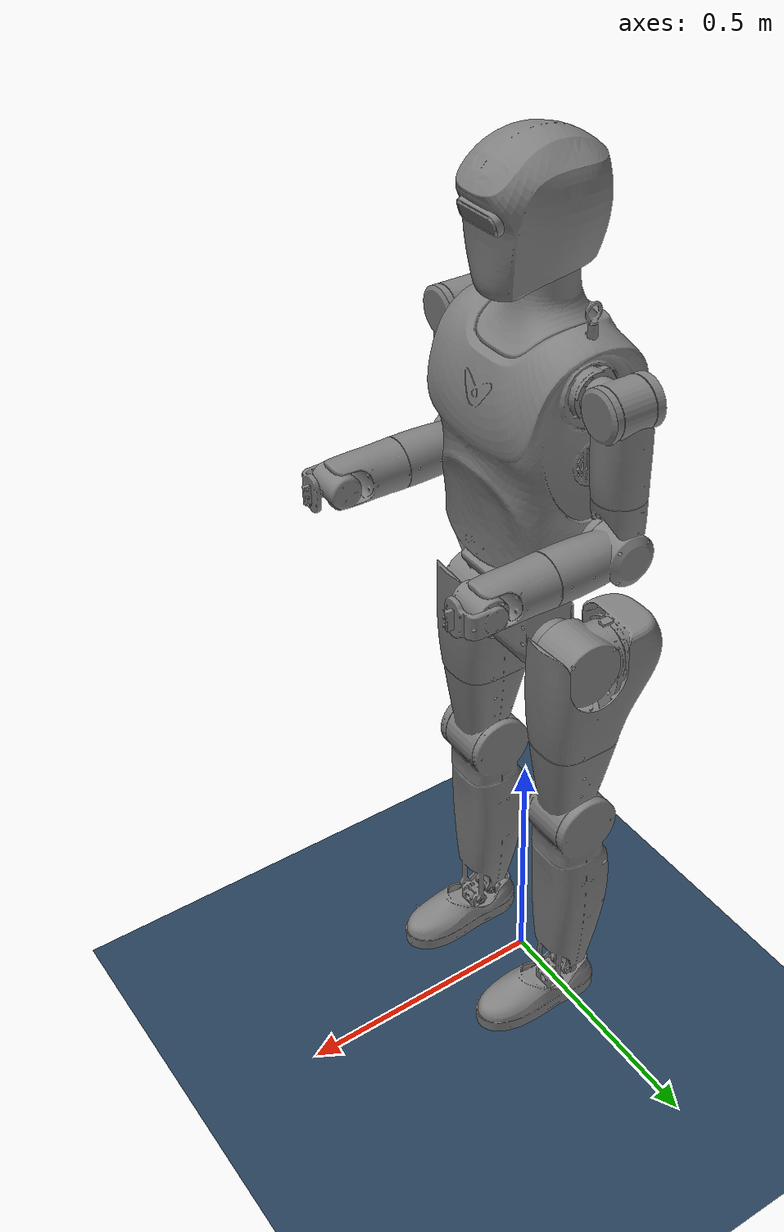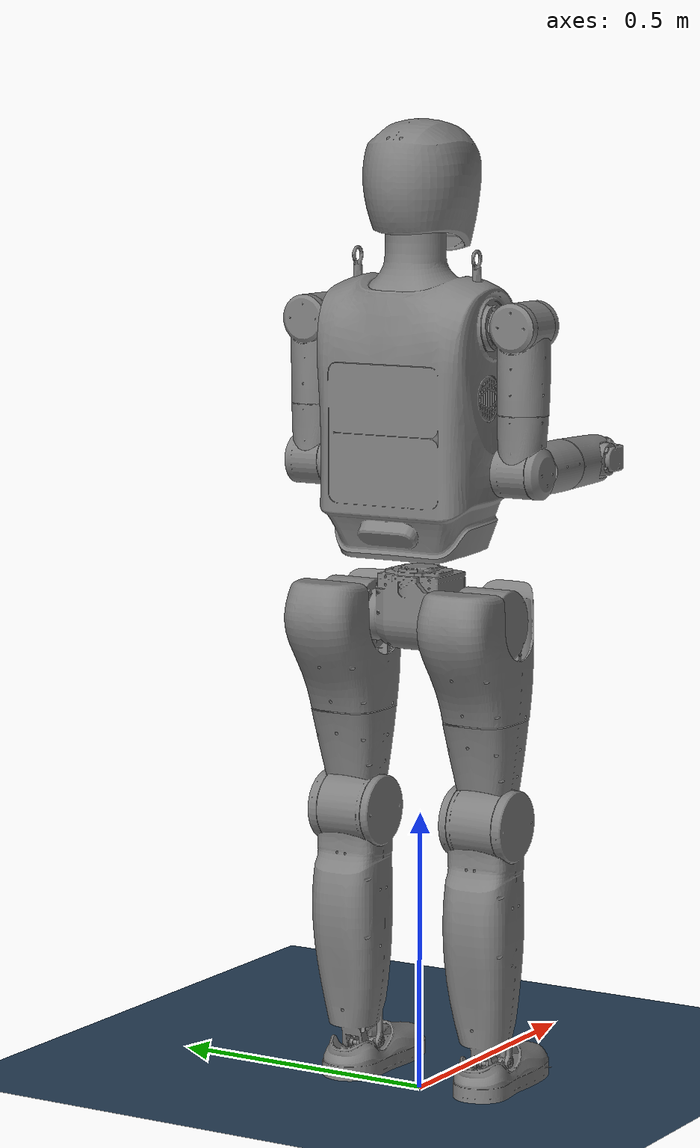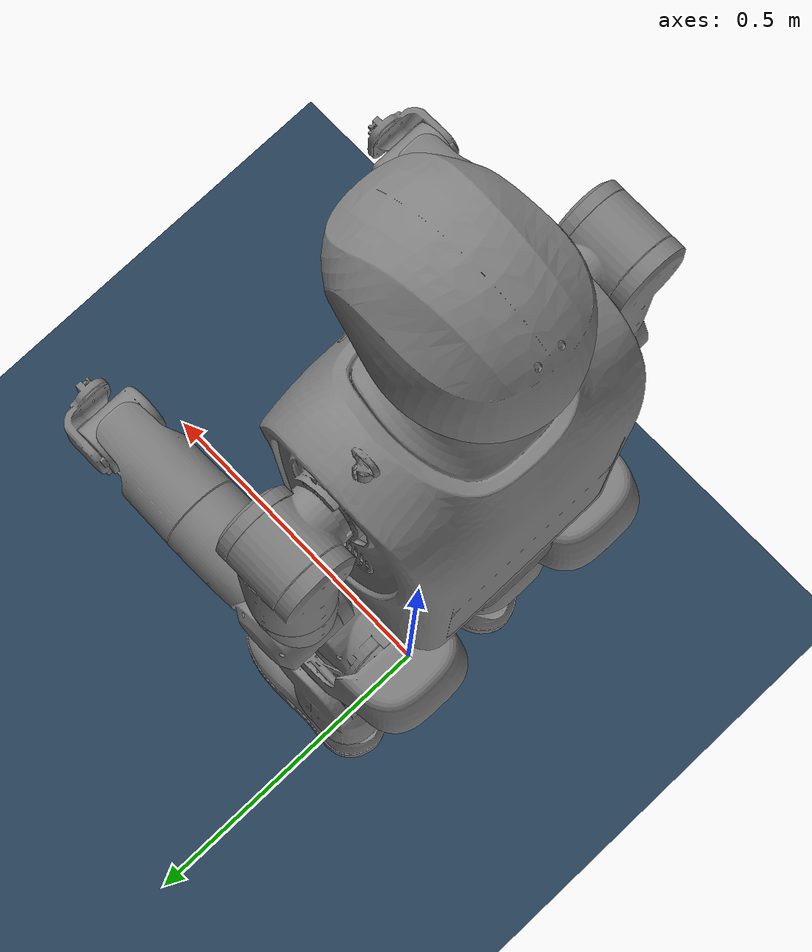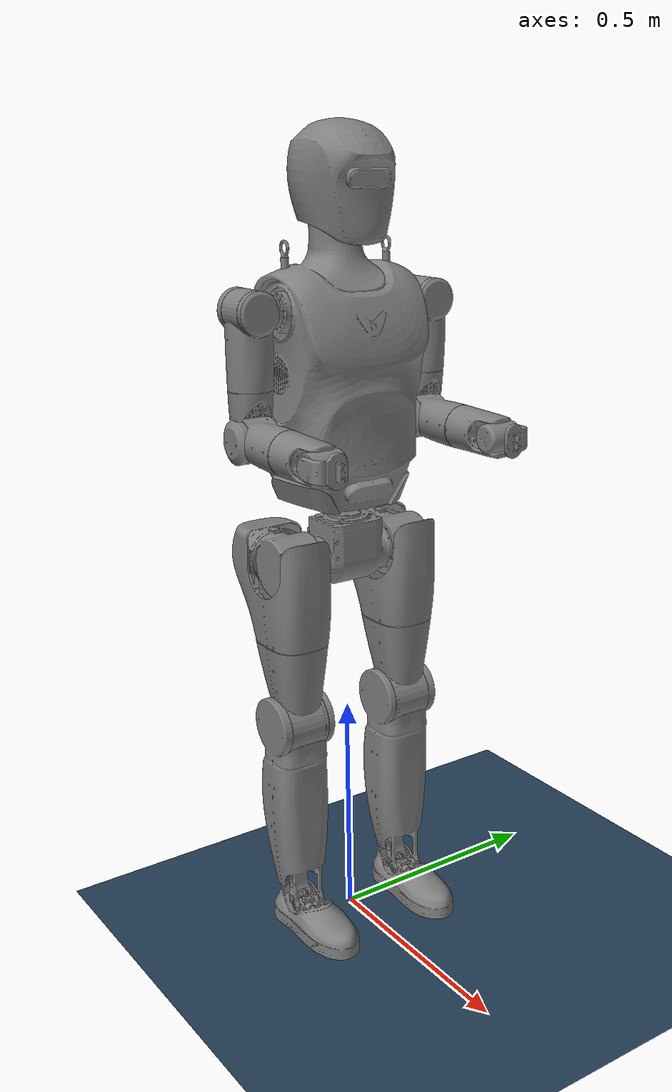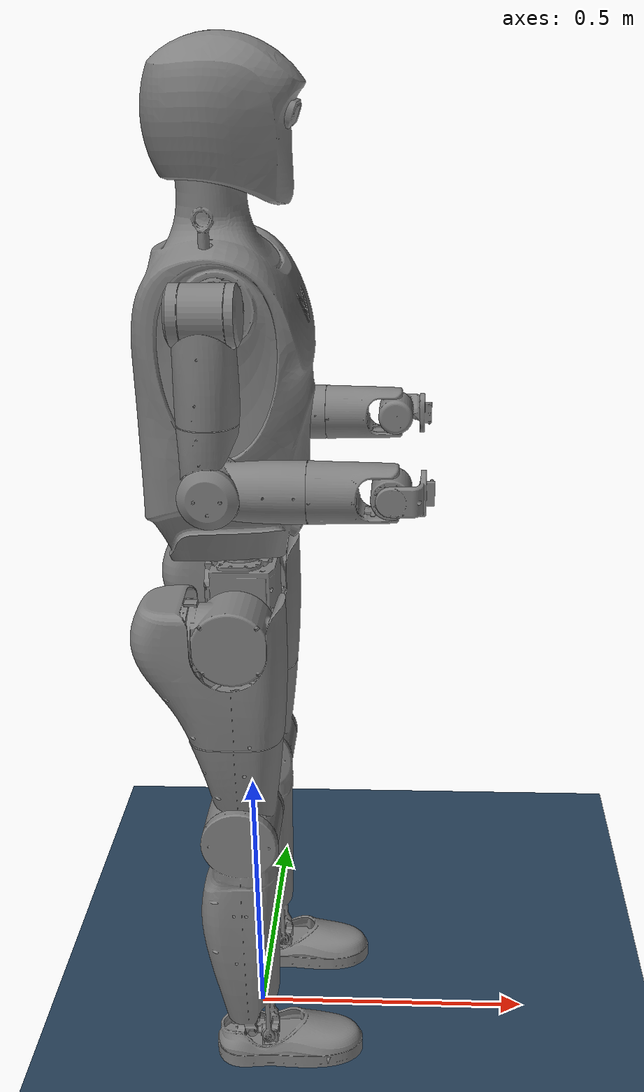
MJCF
<mujoco model="vr_h3_1">
  <include file="vr_h3_1.xml"/>
  <include file="vr_h3_1_sensors.xml"/>
  <include file="vr_h3_1_actuators.xml"/>
  <include file="scene.xml"/>
  <keyframe>
    <key name="home" qpos="0 0 0.85 1 0 0 0 0 0 0 0 0 0 0 0 0 0 0 0 0 0 0 0 0 0 0 0 0 0 0 0 0 0 0 0"/>
  </keyframe>
</mujoco>

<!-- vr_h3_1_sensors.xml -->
<mujoco>
  <sensor>
    <jointpos name="left_hip_pitch_pos" joint="left_hip_pitch_joint" />
    <jointpos name="left_hip_roll_pos" joint="left_hip_roll_joint" />
    <jointpos name="left_hip_yaw_pos" joint="left_hip_yaw_joint" />
    <jointpos name="left_knee_pos" joint="left_knee_pitch_joint" />
    <jointpos name="left_ankle_pitch_pos" joint="left_ankle_pitch_joint" />
    <jointpos name="left_ankle_roll_pos" joint="left_ankle_roll_joint" />

    <jointpos name="right_hip_pitch_pos" joint="right_hip_pitch_joint" />
    <jointpos name="right_hip_roll_pos" joint="right_hip_roll_joint" />
    <jointpos name="right_hip_yaw_pos" joint="right_hip_yaw_joint" />
    <jointpos name="right_knee_pitch_pos" joint="right_knee_pitch_joint" />
    <jointpos name="right_ankle_pitch_pos" joint="right_ankle_pitch_joint" />
    <jointpos name="right_ankle_roll_pos" joint="right_ankle_roll_joint" />

    <jointpos name="waist_yaw_pos" joint="waist_yaw_joint" />

    <jointpos name="left_shoulder_pitch_pos" joint="left_shoulder_pitch_joint" />
    <jointpos name="left_shoulder_roll_pos" joint="left_shoulder_roll_joint" />
    <jointpos name="left_shoulder_yaw_pos" joint="left_shoulder_yaw_joint" />
    <jointpos name="left_elbow_pitch_pos" joint="left_elbow_pitch_joint" />
    <jointpos name="left_wrist_yaw_pos" joint="left_wrist_yaw_joint" />
    <jointpos name="left_wrist_roll_pos" joint="left_wrist_roll_joint" />
    <jointpos name="left_wrist_pitch_pos" joint="left_wrist_pitch_joint" />

    <jointpos name="right_shoulder_pitch_pos" joint="right_shoulder_pitch_joint" />
    <jointpos name="right_shoulder_roll_pos" joint="right_shoulder_roll_joint" />
    <jointpos name="right_shoulder_yaw_pos" joint="right_shoulder_yaw_joint" />
    <jointpos name="right_elbow_pitch_pos" joint="right_elbow_pitch_joint" />
    <jointpos name="right_wrist_yaw_pos" joint="right_wrist_yaw_joint" />
    <jointpos name="right_wrist_roll_pos" joint="right_wrist_roll_joint" />
    <jointpos name="right_wrist_pitch_pos" joint="right_wrist_pitch_joint" />

    <jointvel name="left_hip_pitch_vel" joint="left_hip_pitch_joint" />
    <jointvel name="left_hip_roll_vel" joint="left_hip_roll_joint" />
    <jointvel name="left_hip_yaw_vel" joint="left_hip_yaw_joint" />
    <jointvel name="left_knee_pitch_vel" joint="left_knee_pitch_joint" />
    <jointvel name="left_ankle_pitch_vel" joint="left_ankle_pitch_joint" />
    <jointvel name="left_ankle_roll_vel" joint="left_ankle_roll_joint" />

    <jointvel name="right_hip_pitch_vel" joint="right_hip_pitch_joint" />
    <jointvel name="right_hip_roll_vel" joint="right_hip_roll_joint" />
    <jointvel name="right_hip_yaw_vel" joint="right_hip_yaw_joint" />
    <jointvel name="right_knee_pitch_vel" joint="right_knee_pitch_joint" />
    <jointvel name="right_ankle_pitch_vel" joint="right_ankle_pitch_joint" />
    <jointvel name="right_ankle_roll_vel" joint="right_ankle_roll_joint" />

    <jointvel name="waist_yaw_vel" joint="waist_yaw_joint" />

    <jointvel name="left_shoulder_pitch_vel" joint="left_shoulder_pitch_joint" />
    <jointvel name="left_shoulder_roll_vel" joint="left_shoulder_roll_joint" />
    <jointvel name="left_shoulder_yaw_vel" joint="left_shoulder_yaw_joint" />
    <jointvel name="left_elbow_pitch_vel" joint="left_elbow_pitch_joint" />
    <jointvel name="left_wrist_yaw_vel" joint="left_wrist_yaw_joint" />
    <jointvel name="left_wrist_roll_vel" joint="left_wrist_roll_joint" />
    <jointvel name="left_wrist_pitch_vel" joint="left_wrist_pitch_joint" />

    <jointvel name="right_shoulder_pitch_vel" joint="right_shoulder_pitch_joint" />
    <jointvel name="right_shoulder_roll_vel" joint="right_shoulder_roll_joint" />
    <jointvel name="right_shoulder_yaw_vel" joint="right_shoulder_yaw_joint" />
    <jointvel name="right_elbow_pitch_vel" joint="right_elbow_pitch_joint" />
    <jointvel name="right_wrist_yaw_vel" joint="right_wrist_yaw_joint" />
    <jointvel name="right_wrist_roll_vel" joint="right_wrist_roll_joint" />
    <jointvel name="right_wrist_pitch_vel" joint="right_wrist_pitch_joint" />

    <jointactuatorfrc name="left_hip_pitch_torque" joint="left_hip_pitch_joint" />
    <jointactuatorfrc name="left_hip_roll_torque" joint="left_hip_roll_joint" />
    <jointactuatorfrc name="left_hip_yaw_torque" joint="left_hip_yaw_joint" />
    <jointactuatorfrc name="left_knee_pitch_torque" joint="left_knee_pitch_joint" />
    <jointactuatorfrc name="left_ankle_pitch_torque" joint="left_ankle_pitch_joint" />
    <jointactuatorfrc name="left_ankle_roll_torque" joint="left_ankle_roll_joint" />

    <jointactuatorfrc name="right_hip_pitch_torque" joint="right_hip_pitch_joint" />
    <jointactuatorfrc name="right_hip_roll_torque" joint="right_hip_roll_joint" />
    <jointactuatorfrc name="right_hip_yaw_torque" joint="right_hip_yaw_joint" />
    <jointactuatorfrc name="right_knee_pitch_torque" joint="right_knee_pitch_joint" />
    <jointactuatorfrc name="right_ankle_pitch_torque" joint="right_ankle_pitch_joint" />
    <jointactuatorfrc name="right_ankle_roll_torque" joint="right_ankle_roll_joint" />

    <jointactuatorfrc name="waist_yaw_torque" joint="waist_yaw_joint" />

    <jointactuatorfrc name="left_shoulder_pitch_torque" joint="left_shoulder_pitch_joint" />
    <jointactuatorfrc name="left_shoulder_roll_torque" joint="left_shoulder_roll_joint" />
    <jointactuatorfrc name="left_shoulder_yaw_torque" joint="left_shoulder_yaw_joint" />
    <jointactuatorfrc name="left_elbow_pitch_torque" joint="left_elbow_pitch_joint" />
    <jointactuatorfrc name="left_wrist_yaw_torque" joint="left_wrist_yaw_joint" />
    <jointactuatorfrc name="left_wrist_roll_torque" joint="left_wrist_roll_joint" />
    <jointactuatorfrc name="left_wrist_pitch_torque" joint="left_wrist_pitch_joint" />

    <jointactuatorfrc name="right_shoulder_pitch_torque" joint="right_shoulder_pitch_joint" />
    <jointactuatorfrc name="right_shoulder_roll_torque" joint="right_shoulder_roll_joint" />
    <jointactuatorfrc name="right_shoulder_yaw_torque" joint="right_shoulder_yaw_joint" />
    <jointactuatorfrc name="right_elbow_pitch_torque" joint="right_elbow_pitch_joint" />
    <jointactuatorfrc name="right_wrist_yaw_torque" joint="right_wrist_yaw_joint" />
    <jointactuatorfrc name="right_wrist_roll_torque" joint="right_wrist_roll_joint" />
    <jointactuatorfrc name="right_wrist_pitch_torque" joint="right_wrist_pitch_joint" />

    <!-- IMU sensors -->
    <gyro name="imu_ang_vel" site="imu" />
    <velocimeter name="imu_lin_vel" site="imu" />
    <accelerometer name="imu_lin_acc" site="imu" />
    <subtreeangmom name="root_angmom" body="pelvis" />
  </sensor>
</mujoco>

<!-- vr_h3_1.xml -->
<mujoco model="vr_h3_1">
  <compiler angle="radian" meshdir="assets"/>
  <size njmax="1024" nconmax="512"/>

  <default>
    <default class="vr_h3_1">
      <joint armature="0.1" damping="1" frictionloss="0.1"/>
    </default>
    <default class="vr_h3_1_visual">
      <geom contype="0" conaffinity="0" group="2"/>
    </default>
    <default class="vr_h3_1_collision">
      <geom group="3" rgba="0.9 0.9 0 1"/>
    </default>
  </default>

  <asset>
    <mesh name="pelvis" content_type="model/stl" file="pelvis.stl"/>
    <mesh name="left_hip_pitch_link" content_type="model/stl" file="left_hip_pitch_link.stl"/>
    <mesh name="left_hip_roll_link" content_type="model/stl" file="left_hip_roll_link.stl"/>
    <mesh name="left_hip_yaw_link" content_type="model/stl" file="left_hip_yaw_link.stl"/>
    <mesh name="left_knee_pitch_link" content_type="model/stl" file="left_knee_pitch_link.stl"/>
    <mesh name="left_ankle_pitch_link" content_type="model/stl" file="left_ankle_pitch_link.stl"/>
    <mesh name="left_ankle_roll_link" content_type="model/stl" file="left_ankle_roll_link.stl"/>
    <mesh name="right_hip_pitch_link" content_type="model/stl" file="right_hip_pitch_link.stl"/>
    <mesh name="right_hip_roll_link" content_type="model/stl" file="right_hip_roll_link.stl"/>
    <mesh name="right_hip_yaw_link" content_type="model/stl" file="right_hip_yaw_link.stl"/>
    <mesh name="right_knee_pitch_link" content_type="model/stl" file="right_knee_pitch_link.stl"/>
    <mesh name="right_ankle_pitch_link" content_type="model/stl" file="right_ankle_pitch_link.stl"/>
    <mesh name="right_ankle_roll_link" content_type="model/stl" file="right_ankle_roll_link.stl"/>
    <mesh name="waist_yaw_link" content_type="model/stl" file="waist_yaw_link.stl"/>
    <mesh name="waist_roll_link" content_type="model/stl" file="waist_roll_link.stl"/>
    <mesh name="left_shoulder_pitch_link" content_type="model/stl" file="left_shoulder_pitch_link.stl"/>
    <mesh name="left_shoulder_roll_link" content_type="model/stl" file="left_shoulder_roll_link.stl"/>
    <mesh name="left_shoulder_yaw_link" content_type="model/stl" file="left_shoulder_yaw_link.stl"/>
    <mesh name="left_elbow_pitch_link" content_type="model/stl" file="left_elbow_pitch_link.stl"/>
    <mesh name="left_wrist_yaw_link" content_type="model/stl" file="left_wrist_yaw_link.stl"/>
    <mesh name="left_wrist_roll_link" content_type="model/stl" file="left_wrist_roll_link.stl"/>
    <mesh name="left_wrist_pitch_link" content_type="model/stl" file="left_wrist_pitch_link.stl"/>
    <mesh name="right_shoulder_pitch_link" content_type="model/stl" file="right_shoulder_pitch_link.stl"/>
    <mesh name="right_shoulder_roll_link" content_type="model/stl" file="right_shoulder_roll_link.stl"/>
    <mesh name="right_shoulder_yaw_link" content_type="model/stl" file="right_shoulder_yaw_link.stl"/>
    <mesh name="right_elbow_pitch_link" content_type="model/stl" file="right_elbow_pitch_link.stl"/>
    <mesh name="right_wrist_yaw_link" content_type="model/stl" file="right_wrist_yaw_link.stl"/>
    <mesh name="right_wrist_roll_link" content_type="model/stl" file="right_wrist_roll_link.stl"/>
    <mesh name="right_wrist_pitch_link" content_type="model/stl" file="right_wrist_pitch_link.stl"/>
    <mesh name="head_yaw_link" content_type="model/stl" file="head_yaw_link.stl"/>
    <mesh name="head_pitch_link" content_type="model/stl" file="head_pitch_link.stl"/>
  </asset>

  <worldbody>
    <body name="pelvis" childclass="vr_h3_1" pos = "0.0 0.0 0.85">
      <inertial pos="0.00039 0.00001 0.02925" quat="0.503104 -0.496971 0.496759 -0.503127" mass="3.6444" diaginertia="0.0084252 0.0094913 0.0121679"/>
      <joint name="root" type="free"/>
      <geom name="pelvis_visual_0" class="vr_h3_1_visual" type="mesh" mesh="pelvis"/>
      <geom name="pelvis_collision_1" class="vr_h3_1_collision" size="0.0575 0.05 0.0625" pos="0 0 0.027502" type="box"/>
      <site name="imu" pos="-0.00614 0 -0.02485" size="0.01"/>
      <body name="left_hip_pitch_link" pos="0 0.13345 0">
        <inertial pos="-0.00237 -0.00815 0.00015" quat="0.707259 -0.704347 -0.0547786 -0.0260834" mass="3.46394" diaginertia="0.0050098 0.0056898 0.006817"/>
        <joint name="left_hip_pitch_joint" pos="0 0 0" axis="0 1 0" range="-1.571 0.436" actuatorfrcrange="-369 369"/>
        <geom name="left_hip_pitch_link_visual_0" class="vr_h3_1_visual" quat="0.5 -0.5 0.5 0.5" type="mesh" mesh="left_hip_pitch_link"/>
        <body name="left_hip_roll_link">
          <inertial pos="-0.05315 0.00019 -0.05534" quat="0.299386 0.300502 0.639759 -0.640916" mass="5.4108" diaginertia="0.0115051 0.0434191 0.0468964"/>
          <joint name="left_hip_roll_joint" pos="0 0 0" axis="1 0 0" range="-0.175 1.047" actuatorfrcrange="-369 369"/>
          <geom name="left_hip_roll_link_visual_0" class="vr_h3_1_visual" quat="0.5 0.5 0.5 0.5" type="mesh" mesh="left_hip_roll_link"/>
          <geom name="left_hip_roll_link_collision_1" class="vr_h3_1_collision" size="0.065701 0.094456 0.089701" pos="0 0 -0.074544" quat="0.5 0.5 0.5 0.5" type="box"/>
          <geom name="left_hip_roll_link_collision_2" class="vr_h3_1_collision" size="0.065701 0.065701 0.03" pos="-0.119701 0 -0.000506" quat="0.5 0.5 0.5 0.5" type="box"/>
          <body name="left_hip_yaw_link" pos="0 0 -0.163">
            <inertial pos="0.00114 0.00594 -0.16274" quat="-0.491997 0.499747 0.523649 0.483718" mass="4.22238" diaginertia="0.0064746 0.0187543 0.019897"/>
            <joint name="left_hip_yaw_joint" pos="0 0 0" axis="0 0 1" range="-0.785 0.785" actuatorfrcrange="-191 191"/>
            <geom name="left_hip_yaw_link_visual_0" class="vr_h3_1_visual" pos="0 0 -0.19" quat="0 0 0 1" type="mesh" mesh="left_hip_yaw_link"/>
            <geom name="left_hip_yaw_link_collision_1" class="vr_h3_1_collision" size="0.064107 0.064107 0.028465" pos="0 0 -0.04" quat="0 0 0 1" type="box"/>
            <body name="left_knee_pitch_link" pos="0 0 -0.19">
              <inertial pos="-0.0093 0.00077 -0.17313" quat="-0.0218302 0.710539 0.0180948 0.703086" mass="4.51562" diaginertia="0.0081351 0.0536579 0.0545146"/>
              <joint name="left_knee_pitch_joint" pos="0 0 0" axis="0 1 0" range="-0.175 2.094" actuatorfrcrange="-369 369"/>
              <geom name="left_knee_pitch_link_visual_0" class="vr_h3_1_visual" pos="0 0 0" quat="-0.5 0.5 0.5 0.5" type="mesh" mesh="left_knee_pitch_link"/>
              <geom name="left_knee_pitch_link_collision_1" class="vr_h3_1_collision" size="0.091441 0.055441 0.057441" pos="-0.008043 0 -0.031032" quat="-0.5 0.5 0.5 0.5" type="box"/>
              <geom name="left_knee_pitch_link_collision_2" class="vr_h3_1_collision" size="0.069441 0.069441 0.059441" pos="-0.018343 0 -0.191913" quat="-0.5 0.5 0.5 0.5" type="box"/>
              <geom name="left_knee_pitch_link_collision_3" class="vr_h3_1_collision" size="0.059441 0.050441 0.052441" pos="-0.002033 0 -0.320795" quat="-0.5 0.5 0.5 0.5" type="box"/>
              <body name="left_ankle_pitch_link" pos="0 0 -0.434">
                <inertial pos="-0.00032 0 -0.00762" quat="0.463154 -0.462223 0.534993 0.534435" mass="0.08624" diaginertia="0.0000132 0.0000165 0.0000179"/>
                <joint name="left_ankle_pitch_joint" pos="0 0 0" axis="0 1 0" range="-0.873 0.524" actuatorfrcrange="-140 140"/>
                <geom name="left_ankle_pitch_link_visual_0" class="vr_h3_1_visual" quat="-0.5 0.5 0.5 0.5" type="mesh" mesh="left_ankle_pitch_link"/>
                <body name="left_ankle_roll_link" pos="0 0 -0.014">
                  <inertial pos="0.05279 0.00065 -0.017" quat="-0.999729 -0.0043234 0.0181868 0.0138545" mass="1.15735" diaginertia="0.0010949 0.0054005 0.0059189"/>
                  <joint name="left_ankle_roll_joint" pos="0 0 0" axis="1 0 0" range="-0.262 0.262" actuatorfrcrange="-140 140"/>
                  <geom name="left_ankle_roll_link_visual_0" class="vr_h3_1_visual" quat="0 0.707107 0 0.707107" type="mesh" mesh="left_ankle_roll_link"/>
                  <geom name="left_ankle_roll_link_collision_1" class="vr_h3_1_collision" size="0.014969 0.038005 0.039147" pos="0.130397 0 0.010702" quat="0 0.707107 0 0.707107" type="box"/>
                  <geom name="left_ankle_roll_link_collision_2" class="vr_h3_1_collision" size="0.014969 0.036005 0.009147" pos="-0.051815 0 0.010702" quat="0 0.707107 0 0.707107" type="box"/>
                  <geom name="left_ankle_roll_link_collision_3" class="vr_h3_1_collision" size="0.010969 0.022005 0.01" pos="0.186905 -0.005512 -0.015237" quat="0 0.707107 0 0.707107" type="box"/>
                  <geom name="left_ankle_roll_link_collision_4" class="vr_h3_1_collision" size="0.010969 0.045005 0.112147" pos="0.064757 0 -0.015237" quat="0 0.707107 0 0.707107" type="box"/>
                  <geom name="left_ankle_roll_link_collision_5" class="vr_h3_1_collision" size="0.010969 0.028005 0.008147" pos="-0.055537 0.004563 -0.015237" quat="0 0.707107 0 0.707107" type="box"/>
                  <geom name="left_ankle_roll_link_collision_6" class="vr_h3_1_collision" size="0.005" pos="0.195892 -0.005 -0.035" quat="0 0.707107 0 0.707107"/>
                  <geom name="left_ankle_roll_link_collision_7" class="vr_h3_1_collision" size="0.005" pos="0.11662 -0.05 -0.035" quat="0 0.707107 0 0.707107"/>
                  <geom name="left_ankle_roll_link_collision_8" class="vr_h3_1_collision" size="0.005" pos="0.11662 0.045 -0.035" quat="0 0.707107 0 0.707107"/>
                  <geom name="left_ankle_roll_link_collision_9" class="vr_h3_1_collision" size="0.005" pos="-0.055879 -0.023 -0.035" quat="0 0.707107 0 0.707107"/>
                  <geom name="left_ankle_roll_link_collision_10" class="vr_h3_1_collision" size="0.005" pos="-0.055879 0.025 -0.035" quat="0 0.707107 0 0.707107"/>
                </body>
              </body>
            </body>
          </body>
        </body>
      </body>
      <body name="right_hip_pitch_link" pos="0 -0.13345 0">
        <inertial pos="-0.00237 0.00815 0.00015" quat="0.704347 -0.707259 -0.0260834 -0.0547786" mass="3.46394" diaginertia="0.0050098 0.0056898 0.006817"/>
        <joint name="right_hip_pitch_joint" pos="0 0 0" axis="0 1 0" range="-1.571 0.436" actuatorfrcrange="-369 369"/>
        <geom name="right_hip_pitch_link_visual_0" class="vr_h3_1_visual" quat="0.5 -0.5 0.5 0.5" type="mesh" mesh="right_hip_pitch_link"/>
        <body name="right_hip_roll_link">
          <inertial pos="-0.05315 -0.00019 -0.05534" quat="-0.640916 0.639759 0.300502 0.299386" mass="5.4108" diaginertia="0.0115051 0.0434191 0.0468964"/>
          <joint name="right_hip_roll_joint" pos="0 0 0" axis="1 0 0" range="-1.047 0.175" actuatorfrcrange="-369 369"/>
          <geom name="right_hip_roll_link_visual_0" class="vr_h3_1_visual" quat="0.5 0.5 0.5 0.5" type="mesh" mesh="right_hip_roll_link"/>
          <geom name="right_hip_roll_link_collision_1" class="vr_h3_1_collision" size="0.065701 0.094456 0.089701" pos="0 0 -0.074544" quat="0.5 0.5 0.5 0.5" type="box"/>
          <geom name="right_hip_roll_link_collision_2" class="vr_h3_1_collision" size="0.065701 0.065701 0.03" pos="-0.119701 0 -0.000506" quat="0.5 0.5 0.5 0.5" type="box"/>
          <body name="right_hip_yaw_link" pos="0 0 -0.163">
            <inertial pos="0.00114 -0.00594 -0.16274" quat="0.491997 0.499747 -0.523649 0.483718" mass="4.22238" diaginertia="0.0064746 0.0187543 0.019897"/>
            <joint name="right_hip_yaw_joint" pos="0 0 0" axis="0 0 1" range="-0.785 0.785" actuatorfrcrange="-191 191"/>
            <geom name="right_hip_yaw_link_visual_0" class="vr_h3_1_visual" pos="0 0 -0.19" quat="0 0 0 1" type="mesh" mesh="right_hip_yaw_link"/>
            <geom name="right_hip_yaw_link_collision_1" class="vr_h3_1_collision" size="0.064107 0.064107 0.028465" pos="0 0 -0.04" quat="0 0 0 1" type="box"/>
            <body name="right_knee_pitch_link" pos="0 0 -0.19">
              <inertial pos="-0.0093 -0.00077 -0.17313" quat="-0.710539 0.0218302 0.703086 0.0180948" mass="4.51562" diaginertia="0.0081351 0.0536579 0.0545146"/>
              <joint name="right_knee_pitch_joint" pos="0 0 0" axis="0 1 0" range="-0.175 2.094" actuatorfrcrange="-369 369"/>
              <geom name="right_knee_pitch_link_visual_0" class="vr_h3_1_visual" pos="0 0 0" quat="-0.5 0.5 0.5 0.5" type="mesh" mesh="right_knee_pitch_link"/>
              <geom name="right_knee_pitch_link_collision_1" class="vr_h3_1_collision" size="0.091441 0.055441 0.057441" pos="-0.008043 0 -0.031032" quat="-0.5 0.5 0.5 0.5" type="box"/>
              <geom name="right_knee_pitch_link_collision_2" class="vr_h3_1_collision" size="0.069441 0.069441 0.059441" pos="-0.018343 0 -0.191913" quat="-0.5 0.5 0.5 0.5" type="box"/>
              <geom name="right_knee_pitch_link_collision_3" class="vr_h3_1_collision" size="0.059441 0.050441 0.052441" pos="-0.002033 0 -0.320795" quat="-0.5 0.5 0.5 0.5" type="box"/>
              <body name="right_ankle_pitch_link" pos="0 0 -0.434">
                <inertial pos="-0.00032 0 -0.00762" quat="0.462223 -0.463154 0.534435 0.534993" mass="0.08624" diaginertia="0.0000132 0.0000165 0.0000179"/>
                <joint name="right_ankle_pitch_joint" pos="0 0 0" axis="0 1 0" range="-0.873 0.524" actuatorfrcrange="-140 140"/>
                <geom name="right_ankle_pitch_link_visual_0" class="vr_h3_1_visual" quat="-0.5 0.5 0.5 0.5" type="mesh" mesh="right_ankle_pitch_link"/>
                <body name="right_ankle_roll_link" pos="0 0 -0.014">
                  <inertial pos="0.05279 -0.00065 -0.017" quat="0.999729 -0.0043234 -0.0181868 0.0138545" mass="1.15735" diaginertia="0.0010949 0.0054005 0.0059189"/>
                  <joint name="right_ankle_roll_joint" pos="0 0 0" axis="1 0 0" range="-0.262 0.262" actuatorfrcrange="-140 140"/>
                  <geom name="right_ankle_roll_link_visual_0" class="vr_h3_1_visual" quat="0 0.707107 0 0.707107" type="mesh" mesh="right_ankle_roll_link"/>
                  <geom name="right_ankle_roll_link_collision_1" class="vr_h3_1_collision" size="0.014969 0.038005 0.039147" pos="0.130397 0 0.010702" quat="0 0.707107 0 0.707107" type="box"/>
                  <geom name="right_ankle_roll_link_collision_2" class="vr_h3_1_collision" size="0.014969 0.036005 0.009147" pos="-0.051815 0 0.010702" quat="0 0.707107 0 0.707107" type="box"/>
                  <geom name="right_ankle_roll_link_collision_3" class="vr_h3_1_collision" size="0.010969 0.022005 0.01" pos="0.186905 0.005512 -0.015237" quat="0 0.707107 0 0.707107" type="box"/>
                  <geom name="right_ankle_roll_link_collision_4" class="vr_h3_1_collision" size="0.010969 0.045005 0.112147" pos="0.064757 0 -0.015237" quat="0 0.707107 0 0.707107" type="box"/>
                  <geom name="right_ankle_roll_link_collision_5" class="vr_h3_1_collision" size="0.010969 0.028005 0.008147" pos="-0.055537 -0.004563 -0.015237" quat="0 0.707107 0 0.707107" type="box"/>
                  <geom name="right_ankle_roll_link_collision_6" class="vr_h3_1_collision" size="0.005" pos="0.195892 0.005 -0.035" quat="0 0.707107 0 0.707107"/>
                  <geom name="right_ankle_roll_link_collision_7" class="vr_h3_1_collision" size="0.005" pos="0.11662 0.05 -0.035" quat="0 0.707107 0 0.707107"/>
                  <geom name="right_ankle_roll_link_collision_8" class="vr_h3_1_collision" size="0.005" pos="0.11662 -0.045 -0.035" quat="0 0.707107 0 0.707107"/>
                  <geom name="right_ankle_roll_link_collision_9" class="vr_h3_1_collision" size="0.005" pos="-0.055879 0.023 -0.035" quat="0 0.707107 0 0.707107"/>
                  <geom name="right_ankle_roll_link_collision_10" class="vr_h3_1_collision" size="0.005" pos="-0.055879 -0.025 -0.035" quat="0 0.707107 0 0.707107"/>
                </body>
              </body>
            </body>
          </body>
        </body>
      </body>
      <body name="waist_yaw_link" pos="0 0 0.151">
        <inertial pos="-0.0064 -0.00001 -0.00609" quat="0.697055 -0.69717 -0.118459 -0.118472" mass="1.97052" diaginertia="0.0023392 0.0025432 0.0028637"/>
        <joint name="waist_yaw_joint" pos="0 0 0" axis="0 0 1" range="-2.618 2.618" actuatorfrcrange="-102 102"/>
        <geom name="waist_yaw_link_visual_0" class="vr_h3_1_visual" quat="0.707107 0 0 0.707107" type="mesh" mesh="waist_yaw_link"/>
        <body name="waist_roll_link">
          <inertial pos="-0.03119 0.0007 0.23753" quat="-0.671962 0.0043036 0.740562 -0.0042061" mass="22.2137" diaginertia="0.209579 0.393069 0.462874"/>
          <geom name="waist_roll_link_visual_0" class="vr_h3_1_visual" pos="0 0 0" quat="0 0.707107 0 0.707107" type="mesh" mesh="waist_roll_link"/>
          <geom name="waist_roll_link_collision_1" class="vr_h3_1_collision" size="0.05 0.145 0.1" pos="-0.002 0 0.38" quat="0 0.707107 0 0.707107" type="box"/>
          <geom name="waist_roll_link_collision_2" class="vr_h3_1_collision" size="0.1 0.151 0.124" pos="-0.002 0 0.23" quat="0 0.707107 0 0.707107" type="box"/>
          <geom name="waist_roll_link_collision_3" class="vr_h3_1_collision" size="0.05 0.145 0.12" pos="-0.005 0 0.08" quat="0 0.707107 0 0.707107" type="box"/>
          <body name="left_shoulder_pitch_link" pos="0 0.2075 0.36753">
            <inertial pos="-0.00489 -0.0021666 -0.0000183" quat="0.551393 -0.28526 -0.450542 0.641564" mass="1.02367" diaginertia="0.0008954 0.0009779 0.0010043"/>
            <joint name="left_shoulder_pitch_joint" pos="0 0 0" axis="0 0.996219 0.0868828" range="-3.14 1.047" actuatorfrcrange="-66 66"/>
            <geom name="left_shoulder_pitch_link_visual_0" class="vr_h3_1_visual" quat="0.521268 -0.477786 0.477786 0.521268" type="mesh" mesh="left_shoulder_pitch_link"/>
            <body name="left_shoulder_roll_link" pos="-0.009 0 0">
              <inertial pos="0.00046 0.0000202 -0.09827" quat="0.500502 0.504283 0.49799 -0.497195" mass="1.19875" diaginertia="0.0013096 0.0026266 0.0027416"/>
              <joint name="left_shoulder_roll_joint" pos="0 0 0" axis="1 0 0" range="0 2.356" actuatorfrcrange="-66 66"/>
              <geom name="left_shoulder_roll_link_visual_0" class="vr_h3_1_visual" quat="0.500076 0.499924 0.500076 0.499924" type="mesh" mesh="left_shoulder_roll_link"/>
              <geom name="left_shoulder_roll_link_collision_1" class="vr_h3_1_collision" size="0.04 0.07 0.04" pos="0 -0.0000206 -0.068" quat="0.500076 0.499924 0.500076 0.499924" type="box"/>
              <body name="left_shoulder_yaw_link" pos="0 -0.0000758 -0.25">
                <inertial pos="-0.00499 -0.0147933 0.0550945" quat="0.548317 -0.446329 0.309129 0.636065" mass="0.29744" diaginertia="0.0002575 0.0006384 0.0006648"/>
                <joint name="left_shoulder_yaw_joint" pos="0 0 0" axis="0 0.0003032 1" range="-2.967 2.967" actuatorfrcrange="-66 66"/>
                <geom name="left_shoulder_yaw_link_visual_0" class="vr_h3_1_visual" quat="0 0 0.0001516 1" type="mesh" mesh="left_shoulder_yaw_link"/>
                <geom name="left_shoulder_yaw_link_collision_1" class="vr_h3_1_collision" size="0.038896 0.038896 0.015" pos="0 0.0000284 0.093834" quat="0 0 0.0001516 1" type="box"/>
                <geom name="left_shoulder_yaw_link_collision_2" class="vr_h3_1_collision" size="0.022896 0.038896 0.016933" pos="-0.016 0.0000197 0.064901" quat="0 0 0.0001516 1" type="box"/>
                <body name="left_elbow_pitch_link">
                  <inertial pos="0.04407 0.00163 -0.0000605" quat="-0.0102348 -0.0110786 0.712544 0.701465" mass="1.59951" diaginertia="0.0013069 0.005226 0.0052862"/>
                  <joint name="left_elbow_pitch_joint" pos="0 0 0" axis="0 1 -0.0003032" range="-0.524 1.571" actuatorfrcrange="-66 66"/>
                  <geom name="left_elbow_pitch_link_visual_0" class="vr_h3_1_visual" pos="0 0 0" quat="-0.499924 0.500076 0.500076 0.499924" type="mesh" mesh="left_elbow_pitch_link"/>
                  <geom name="left_elbow_pitch_link_collision_1" class="vr_h3_1_collision" size="0.041004 0.041004 0.041004" pos="0.096 0 0" quat="-0.499924 0.500076 0.500076 0.499924" type="box"/>
                  <body name="left_wrist_yaw_link" pos="0.247 0 0">
                    <inertial pos="-0.06275 0 -0.00151" quat="-0.706905 0.707139 0.0109235 0.0109581" mass="0.63403" diaginertia="0.0005751 0.0007938 0.0009662"/>
                    <joint name="left_wrist_yaw_joint" pos="0 0 0" axis="-1 0 0" range="-2.967 2.967" actuatorfrcrange="-34 34"/>
                    <geom name="left_wrist_yaw_link_visual_0" class="vr_h3_1_visual" quat="-0.499924 0.500076 0.499924 -0.500076" type="mesh" mesh="left_wrist_yaw_link"/>
                    <geom name="left_wrist_yaw_link_collision_1" class="vr_h3_1_collision" size="0.041004 0.041004 0.025729" pos="-0.077271 0 0" quat="-0.499924 0.500076 0.499924 -0.500076" type="box"/>
                    <body name="left_wrist_roll_link">
                      <inertial pos="0.00982 0.00219 0" quat="0.486545 0.501913 -0.519685 -0.491207" mass="0.4084" diaginertia="0.0001904 0.000242 0.0002487"/>
                      <joint name="left_wrist_roll_joint" pos="0 0 0" axis="0 0.0003032 1" range="-1.134 0.698" actuatorfrcrange="-11 11"/>
                      <geom name="left_wrist_roll_link_visual_0" class="vr_h3_1_visual" quat="0 0 -0.0001516 -1" type="mesh" mesh="left_wrist_roll_link"/>
                      <geom name="left_wrist_roll_link_collision_1" class="vr_h3_1_collision" size="0.029 0.032 0.029" pos="0.01 0 0" quat="0 0 -0.0001516 -1" type="box"/>
                      <body name="left_wrist_pitch_link" pos="0.01 0 0">
                        <inertial pos="0.03141 0.0184 0.0000044" quat="0.273977 0.272915 -0.651105 -0.653082" mass="0.14968" diaginertia="0.0000445 0.0001146 0.0001243"/>
                        <joint name="left_wrist_pitch_joint" pos="0 0 0" axis="0 1 -0.0003032" range="-0.96 0.96" actuatorfrcrange="-11 11"/>
                        <geom name="left_wrist_pitch_link_visual_0" class="vr_h3_1_visual" pos="0 0 0" quat="0 0 -0.707214 -0.707" type="mesh" mesh="left_wrist_pitch_link"/>
                        <geom name="left_wrist_pitch_link_collision_1" class="vr_h3_1_collision" size="0.002399 0.033058 0.025221" pos="0.04441 0.005139 0" quat="0 0 -0.707214 -0.707" type="box"/>
                        <geom name="left_wrist_pitch_link_collision_2" class="vr_h3_1_collision" size="0.023399 0.022016 0.004221" pos="0.01 0.038911 -0.0000118" quat="0 0 -0.707214 -0.707" type="box"/>
                      </body>
                    </body>
                  </body>
                </body>
              </body>
            </body>
          </body>
          <body name="right_shoulder_pitch_link" pos="0 -0.2075 0.36753">
            <inertial pos="-0.00489 0.0021666 -0.0000183" quat="0.28526 -0.551393 0.641564 -0.450542" mass="1.02367" diaginertia="0.0008954 0.0009779 0.0010043"/>
            <joint name="right_shoulder_pitch_joint" pos="0 0 0" axis="0 0.996219 -0.0868828" range="-3.14 1.047" actuatorfrcrange="-66 66"/>
            <geom name="right_shoulder_pitch_link_visual_0" class="vr_h3_1_visual" quat="0.477786 -0.521268 0.521268 0.477786" type="mesh" mesh="right_shoulder_pitch_link"/>
            <body name="right_shoulder_roll_link" pos="-0.009 0 0">
              <inertial pos="0.00046 -0.0000202 -0.09827" quat="0.497195 -0.49799 -0.504283 -0.500502" mass="1.19875" diaginertia="0.0013096 0.0026266 0.0027416"/>
              <joint name="right_shoulder_roll_joint" pos="0 0 0" axis="1 0 0" range="-2.356 0" actuatorfrcrange="-66 66"/>
              <geom name="right_shoulder_roll_link_visual_0" class="vr_h3_1_visual" quat="-0.499924 -0.500076 -0.499924 -0.500076" type="mesh" mesh="right_shoulder_roll_link"/>
              <geom name="right_shoulder_roll_link_collision_1" class="vr_h3_1_collision" size="0.04 0.07 0.04" pos="0 0.0000206 -0.068" quat="-0.499924 -0.500076 -0.499924 -0.500076" type="box"/>
              <body name="right_shoulder_yaw_link" pos="0 0.0000758 -0.25">
                <inertial pos="-0.00499 -0.0148267 0.0550855" quat="-0.542472 0.453095 -0.305981 -0.637812" mass="0.29744" diaginertia="0.0002547 0.00063 0.0006579"/>
                <joint name="right_shoulder_yaw_joint" pos="0 0 0" axis="0 -0.0003032 1" range="-2.967 2.967" actuatorfrcrange="-66 66"/>
                <geom name="right_shoulder_yaw_link_visual_0" class="vr_h3_1_visual" quat="0 0 0.0001516 -1" type="mesh" mesh="right_shoulder_yaw_link"/>
                <geom name="right_shoulder_yaw_link_collision_1" class="vr_h3_1_collision" size="0.038896 0.038896 0.015" pos="0 -0.0000284 0.093834" quat="0 0 0.0001516 -1" type="box"/>
                <geom name="right_shoulder_yaw_link_collision_2" class="vr_h3_1_collision" size="0.022896 0.038896 0.016933" pos="-0.016 -0.0000197 0.064901" quat="0 0 0.0001516 -1" type="box"/>
                <body name="right_elbow_pitch_link">
                  <inertial pos="0.04407 0.00163 -0.0000395" quat="-0.712238 -0.701775 -0.0105773 -0.0108035" mass="1.59951" diaginertia="0.0013069 0.005226 0.0052863"/>
                  <joint name="right_elbow_pitch_joint" pos="0 0 0" axis="0 1 0.0003032" range="-0.524 1.571" actuatorfrcrange="-66 66"/>
                  <geom name="right_elbow_pitch_link_visual_0" class="vr_h3_1_visual" pos="0 0 0" quat="0.500076 -0.499924 -0.499924 -0.500076" type="mesh" mesh="right_elbow_pitch_link"/>
                  <geom name="right_elbow_pitch_link_collision_1" class="vr_h3_1_collision" size="0.041004 0.041004 0.041004" pos="0.096 0 0" quat="0.500076 -0.499924 -0.499924 -0.500076" type="box"/>
                  <body name="right_wrist_yaw_link" pos="0.247 0 0">
                    <inertial pos="-0.06275 0 0.00151" quat="0.0109615 -0.0109201 -0.706925 -0.707119" mass="0.63403" diaginertia="0.0005751 0.0007938 0.0009662"/>
                    <joint name="right_wrist_yaw_joint" pos="0 0 0" axis="-1 0 0" range="-2.967 2.967" actuatorfrcrange="-34 34"/>
                    <geom name="right_wrist_yaw_link_visual_0" class="vr_h3_1_visual" quat="0.500076 -0.499924 -0.500076 0.499924" type="mesh" mesh="right_wrist_yaw_link"/>
                    <geom name="right_wrist_yaw_link_collision_1" class="vr_h3_1_collision" size="0.041004 0.041004 0.025729" pos="-0.077271 0 0" quat="0.500076 -0.499924 -0.500076 0.499924" type="box"/>
                    <body name="right_wrist_roll_link">
                      <inertial pos="0.00982 -0.00219 0" quat="-0.519536 -0.491365 0.486393 0.502061" mass="0.4084" diaginertia="0.0001904 0.0002421 0.0002487"/>
                      <joint name="right_wrist_roll_joint" pos="0 0 0" axis="0 -0.0003032 1" range="-0.698 1.134" actuatorfrcrange="-11 11"/>
                      <geom name="right_wrist_roll_link_visual_0" class="vr_h3_1_visual" quat="0 0 -0.0001516 1" type="mesh" mesh="right_wrist_roll_link"/>
                      <geom name="right_wrist_roll_link_collision_1" class="vr_h3_1_collision" size="0.029 0.032 0.029" pos="0.01 0 0" quat="0 0 -0.0001516 1" type="box"/>
                      <body name="right_wrist_pitch_link" pos="0.01 0 0">
                        <inertial pos="0.03141 -0.0184 0.0000044" quat="0.272915 0.273977 0.653082 0.651105" mass="0.14968" diaginertia="0.0000445 0.0001146 0.0001243"/>
                        <joint name="right_wrist_pitch_joint" pos="0 0 0" axis="0 1 0.0003032" range="-0.96 0.96" actuatorfrcrange="-11 11"/>
                        <geom name="right_wrist_pitch_link_visual_0" class="vr_h3_1_visual" quat="0 0 0.707 0.707214" type="mesh" mesh="right_wrist_pitch_link"/>
                        <geom name="right_wrist_pitch_link_collision_1" class="vr_h3_1_collision" size="0.002399 0.033058 0.025221" pos="0.04441 -0.005139 0" quat="0 0 0.707 0.707214" type="box"/>
                        <geom name="right_wrist_pitch_link_collision_2" class="vr_h3_1_collision" size="0.023399 0.022016 0.004221" pos="0.01 -0.038911 -0.0000118" quat="0 0 0.707 0.707214" type="box"/>
                      </body>
                    </body>
                  </body>
                </body>
              </body>
            </body>
          </body>
          <body name="head_yaw_link" pos="-0.015 0 0.5881">
            <inertial pos="-0.00099 0.00538 -0.0318" quat="-0.0560424 0.703068 -0.021687 0.70858" mass="0.74204" diaginertia="0.0005898 0.0017361 0.0018211"/>
            <geom name="head_yaw_link_visual_0" class="vr_h3_1_visual" quat="-1 0 0 0" type="mesh" mesh="head_yaw_link"/>
            <body name="head_pitch_link">
              <inertial pos="0.03262 -0.0005 0.01482" quat="-0.0986943 -0.0143738 -0.988032 0.117663" mass="0.88663" diaginertia="0.0037466 0.0052497 0.0053012"/>
              <geom name="head_pitch_link_visual_0" class="vr_h3_1_visual" quat="0 0 -0.707107 -0.707107" type="mesh" mesh="head_pitch_link"/>
              <geom name="head_pitch_link_collision_1" class="vr_h3_1_collision" size="0.110093 0.077614 0.082732" pos="0.025672 0 0.02359" quat="0 0 -0.707107 -0.707107" type="box"/>
              <geom name="head_pitch_link_collision_2" class="vr_h3_1_collision" size="0.041132 0.021736 0.06016" pos="0.08504 0 -0.07576" quat="0 0 -0.707107 -0.707107" type="box"/>
            </body>
          </body>
        </body>
      </body>
    </body>
  </worldbody>
  <include file="vr_h3_1_sensors.xml"/>
</mujoco>

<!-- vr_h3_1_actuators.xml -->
<mujoco>
	<actuator>
    <motor name="left_hip_pitch_joint" joint="left_hip_pitch_joint"/>
    <motor name="left_hip_roll_joint" joint="left_hip_roll_joint"/>
    <motor name="left_hip_yaw_joint" joint="left_hip_yaw_joint"/>
    <motor name="left_knee_pitch_joint" joint="left_knee_pitch_joint"/>
    <motor name="left_ankle_pitch_joint" joint="left_ankle_pitch_joint"/>
    <motor name="left_ankle_roll_joint" joint="left_ankle_roll_joint"/>

    <motor name="right_hip_pitch_joint" joint="right_hip_pitch_joint"/>
    <motor name="right_hip_roll_joint" joint="right_hip_roll_joint"/>
    <motor name="right_hip_yaw_joint" joint="right_hip_yaw_joint"/>
    <motor name="right_knee_pitch_joint" joint="right_knee_pitch_joint"/>
    <motor name="right_ankle_pitch_joint" joint="right_ankle_pitch_joint"/>
    <motor name="right_ankle_roll_joint" joint="right_ankle_roll_joint"/>

    <motor name="waist_yaw_joint" joint="waist_yaw_joint"/>

    <motor name="left_shoulder_pitch_joint" joint="left_shoulder_pitch_joint"/>
    <motor name="left_shoulder_roll_joint" joint="left_shoulder_roll_joint"/>
    <motor name="left_shoulder_yaw_joint" joint="left_shoulder_yaw_joint"/>
    <motor name="left_elbow_pitch_joint" joint="left_elbow_pitch_joint"/>
    <motor name="left_wrist_yaw_joint" joint="left_wrist_yaw_joint"/>
    <motor name="left_wrist_roll_joint" joint="left_wrist_roll_joint"/>
    <motor name="left_wrist_pitch_joint" joint="left_wrist_pitch_joint"/>

    <motor name="right_shoulder_pitch_joint" joint="right_shoulder_pitch_joint"/>
    <motor name="right_shoulder_roll_joint" joint="right_shoulder_roll_joint"/>
    <motor name="right_shoulder_yaw_joint" joint="right_shoulder_yaw_joint"/>
    <motor name="right_elbow_pitch_joint" joint="right_elbow_pitch_joint"/>
    <motor name="right_wrist_yaw_joint" joint="right_wrist_yaw_joint"/>
    <motor name="right_wrist_roll_joint" joint="right_wrist_roll_joint"/>
    <motor name="right_wrist_pitch_joint" joint="right_wrist_pitch_joint"/>

  </actuator>
</mujoco>

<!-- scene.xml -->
<mujoco>
	<visual>
		<headlight diffuse="0.6 0.6 0.6" ambient="0.3 0.3 0.3" specular="0 0 0" />
		<rgba haze="0.15 0.25 0.35 1" />
		<global azimuth="-130" elevation="-20" />
	</visual>

	<asset>
		<texture type="skybox" builtin="gradient" rgb1="0.3 0.5 0.7" rgb2="0 0 0" width="512"
			height="3072" />
		<texture type="2d" name="groundplane" builtin="checker" mark="edge" rgb1="0.2 0.3 0.4"
			rgb2="0.1 0.2 0.3"
			markrgb="0.8 0.8 0.8" width="300" height="300" />
		<material name="groundplane" texture="groundplane" texuniform="true" texrepeat="5 5"
			reflectance="0.2" />
	</asset>

	<worldbody>
		<light pos="0 0 1.5" dir="0 0 -1" directional="true" />
		<geom name="floor" size="0 0 0.05" type="plane" material="groundplane" />
	</worldbody>
</mujoco>
